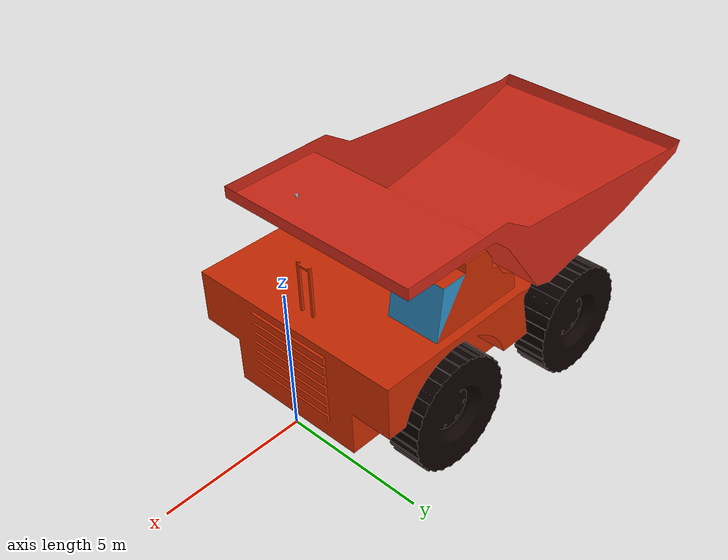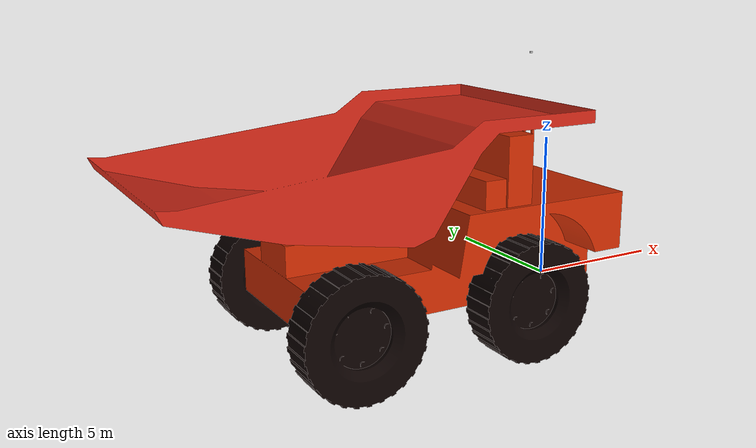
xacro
<?xml version="1.0" ?>
<robot xmlns:xacro="http://www.ros.org/wiki/xacro" name="haul_truck">
  <material name="red">
    <color rgba="0.816 0.157 0.09 1"/>
  </material>
  <material name="black">
    <color rgba="0.043 0.004 0 1"/>
  </material>
  <material name="orange">
    <color rgba="1 0.482 0.251 1" />
  </material>

  <xacro:include filename="$(find start_creating_robots)/worlds_and_models/krytn/inertial.xacro" />

  <xacro:macro name="wheel" params="name">
    <link name="${name}">
      <visual>
        <!--Wheel/Body001.-->
        <origin xyz="0.0 0.0 0.0" rpy="0.0 -0.0 0.0"/>
        <geometry>
          <mesh filename="file://$(find haul_truck)/worlds_and_models/haul_truck/meshes/safeai_Body001.dae"/>
        </geometry>
        <material name="black" />
      </visual>
      <collision>
        <!--Wheel/Body001.-->
        <origin xyz="0.0 0.0 0.0" rpy="0.0 -0.0 0.0"/>
        <geometry>
          <mesh filename="file://$(find haul_truck)/worlds_and_models/haul_truck/meshes/safeai_Pad012.dae"/>
        </geometry>

      </collision>
      <xacro:sphere_inertial radius="1" mass="0.2" />
    </link>

    <gazebo reference="${name}">
      <collision>
        <surface>
          <friction>
            <ode>
              <mu>1.0</mu>
              <mu2>1.0</mu2>
              <fdir1>0 0 1</fdir1>
              <slip1>0.0</slip1>
              <slip2>0.0</slip2>
              <min_depth>0.01</min_depth>
              <kp>1e8</kp>
            </ode>
          </friction>
        </surface>
      </collision>
    </gazebo>
  </xacro:macro>

  <link name="base_footprint" />

  <joint name="chassis_joint" type="fixed">
    <parent link="base_footprint" />
    <child link="chassis_link" />
    <origin rpy="0 0 1.5705" />
  </joint>

  <!--Generated by CROSS, a ROS Workbench for FreeCAD (https://github.com/galou/freecad.cross)-->
  <link name="chassis_link">
    <visual>
      <!--Chassis/Body.-->
      <origin xyz="0.0 0.0 0.0" rpy="0.0 -0.0 0.0"/>
      <geometry>
        <mesh filename="file://$(find haul_truck)/worlds_and_models/haul_truck/meshes/safeai_Body.dae"/>
      </geometry>

    </visual>
    <collision>
      <!--real_chassis_link_.Body_bbox-->
      <origin xyz="0.090073 5.25 3.35026" rpy="0.0 -0.0 0.0"/>
      <geometry>
        <box size="7.6383887394832115 10.500000000000005 0.54423459552541"/>
      </geometry>
      <gazebo>
        <mu>0.1</mu>
      </gazebo>
    </collision>
    <xacro:box_inertial_with_origin x="8" y="4" z="3" mass="100">
      <origin xyz="0 5 0" rpy="0 0 0" />
    </xacro:box_inertial_with_origin>
  </link>
  <link name="tray_link">
    <visual>
      <!--Tray/Body002.-->
      <origin xyz="0.0 0.0 0.0" rpy="0.0 -0.0 0.0"/>
      <geometry>
        <mesh filename="file://$(find haul_truck)/worlds_and_models/haul_truck/meshes/Unnamed_Body002.dae"/>
      </geometry>
      <material name="red" />
    </visual>
    <collision>
      <!--Tray/Body002.-->
      <origin xyz="0.0 0.0 0.0" rpy="0.0 -0.0 0.0"/>
      <geometry>
        <mesh filename="file://$(find haul_truck)/worlds_and_models/haul_truck/meshes/Unnamed_Body002.dae"/>
      </geometry>
    </collision>
  </link>
  <xacro:wheel name="front_left_wheel_link" />
  <xacro:wheel name="front_right_wheel_link" />
  <xacro:wheel name="rear_left_wheel_link" />
  <xacro:wheel name="rear_right_wheel_link" />

  <joint name="tray_joint" type="fixed">
    <parent link="chassis_link"/>
    <child link="tray_link"/>
    <origin xyz="-3.8 1.0 3.1" rpy="0.0 -0.0 0.0"/>
  </joint>

  <xacro:if value="False">
    <link name="front_left_steering_link">
      <xacro:box_inertial x="0.1" y="1" z="0.1" mass="1"/>
    </link>
    <link name="front_right_steering_link">
      <xacro:box_inertial x="0.1" y="1" z="0.1" mass="1"/>
    </link>
    <joint name="front_left_steering_joint" type="revolute">
      <parent link="chassis_link" />
      <child link="front_left_steering_link" />
      <axis xyz="0 0 1"/>
      <origin xyz="2.8 3.2 0.6" rpy="0.0 -0.0 0.0"/>
      <limit lower="-0.4" upper="0.4" effort="10000000" velocity="1000.00"/>

    </joint>
    <joint name="front_right_steering_joint" type="revolute">
      <parent link="chassis_link" />
      <child link="front_right_steering_link" />
      <origin xyz="-4.0 3.2 0.6" rpy="0.0 -0.0 0.0"/>
      <axis xyz="0 0 1"/>
      <limit lower="-0.4" upper="0.4" effort="10000000" velocity="1000.00"/>
    </joint>

    <joint name="front_left_wheel_joint" type="continuous">
      <parent link="front_left_steering_link"/>
      <child link="front_left_wheel_link"/>
      <axis xyz="1 0 0"/>
    </joint>
    <joint name="front_right_wheel_joint" type="continuous">
      <parent link="front_right_steering_link"/>
      <child link="front_right_wheel_link"/>
      <axis xyz="1 0 0"/>
    </joint>

  </xacro:if>

  <xacro:if value="True">

    <joint name="front_left_wheel_joint" type="continuous">
      <parent link="chassis_link"/>
      <child link="front_left_wheel_link"/>
      <origin xyz="2.8 3.2 0.6" rpy="0.0 -0.0 0.0"/>
      <limit effort="10000000" velocity="1000.00" stiffness="0" dissipation="0"/>

      <axis xyz="1 0 0"/>
    </joint>
    <joint name="front_right_wheel_joint" type="continuous">
      <parent link="chassis_link"/>
      <child link="front_right_wheel_link"/>
      <origin xyz="-4.0 3.2 0.6" rpy="0.0 -0.0 0.0"/>
      <limit effort="10000000" velocity="1000.00" stiffness="0" dissipation="0"/>

      <axis xyz="1 0 0"/>
    </joint>
  </xacro:if>

  <joint name="rear_left_wheel_joint" type="continuous">
    <parent link="chassis_link"/>
    <child link="rear_left_wheel_link"/>
    <origin xyz="2.8 9.3 0.6" rpy="0.0 -0.0 0.0"/>
    <axis xyz="1 0 0"/>
    <limit effort="10000000" velocity="1000.00"/>

  </joint>
  <joint name="rear_right_wheel_joint" type="continuous">
    <parent link="chassis_link"/>
    <child link="rear_right_wheel_link"/>
    <origin xyz="-4.0 9.3 0.6" rpy="0.0 -0.0 0.0"/>
    <axis xyz="1 0 0"/>
    <limit effort="10000000" velocity="1000.00"/>
  </joint>

  <xacro:include filename="$(find haul_truck)/worlds_and_models/haul_truck/lidar_3d_v1.urdf.xacro" />

  <gazebo>
    <plugin filename="ignition-gazebo-sensors-system" name="ignition::gazebo::systems::Sensors">
      <render_engine>ogre2</render_engine>
    </plugin>

    <!-- Publish joints for robot description tf publisher. -->
    <plugin filename="ignition-gazebo-joint-state-publisher-system" name="ignition::gazebo::systems::JointStatePublisher">
      <topic>joint_states</topic>
    </plugin>

  </gazebo>

  <ros2_control name="GazeboSystem" type="system">
    <hardware>
      <plugin>ign_ros2_control/IgnitionSystem</plugin>
    </hardware>
    <xacro:if value="False">
      <joint name="front_left_steering_joint">
        <command_interface name="position">
          <param name="min">-0.2</param>
          <param name="max">0.2</param>
        </command_interface>
        <state_interface name="position"/>
      </joint>
      <joint name="front_right_steering_joint">
        <command_interface name="position">
          <param name="min">-0.2</param>
          <param name="max">0.2</param>
        </command_interface>
        <state_interface name="position"/>
      </joint>
      <!-- Adding front wheel state interfaces so that their position is given to ros -->
      <joint name="front_left_wheel_joint">
        <command_interface name="velocity">
          <param name="min">-0.2</param>
          <param name="max">0.2</param>
        </command_interface>
        <state_interface name="position"/>
        <state_interface name="velocity"/>
      </joint>
      <joint name="front_right_wheel_joint">
        <command_interface name="velocity">
          <param name="min">-0.2</param>
          <param name="max">0.2</param>
        </command_interface>
        <state_interface name="position"/>
        <state_interface name="velocity"/>
      </joint>
    </xacro:if>
    <xacro:if value="False">
      <joint name="front_left_wheel_joint">
        <command_interface name="velocity">
          <param name="min">-0.2</param>
          <param name="max">0.2</param>
        </command_interface>
        <state_interface name="position"/>
        <state_interface name="velocity"/>
      </joint>
      <joint name="front_right_wheel_joint">
        <command_interface name="velocity">
          <param name="min">-0.2</param>
          <param name="max">0.2</param>
        </command_interface>
        <state_interface name="position"/>
        <state_interface name="velocity"/>
      </joint>
    </xacro:if>
    <joint name="rear_left_wheel_joint">
      <command_interface name="velocity">
        <param name="min">-0.2</param>
        <param name="max">0.2</param>
      </command_interface>
      <state_interface name="position"/>
      <state_interface name="velocity"/>
    </joint>
    <joint name="rear_right_wheel_joint">
      <command_interface name="velocity">
        <param name="min">-0.2</param>
        <param name="max">0.2</param>
      </command_interface>
      <state_interface name="position"/>
      <state_interface name="velocity"/>
    </joint>

  </ros2_control>

  <gazebo>
    <plugin filename="ign_ros2_control-system" name="ign_ros2_control::IgnitionROS2ControlPlugin">
      <ros>
        <remapping>/diff_drive_base_controller/odometry:=odom</remapping>
        <remapping>/diff_drive_base_controller/tf_odometry:=tf</remapping>
        <remapping>/diff_drive_base_controller/cmd_vel_unstamped:=cmd_vel</remapping>
      </ros>
      <parameters>$(find haul_truck)/config/diffdrive_control.yaml</parameters>
    </plugin>
    <!-- Remapping topics so that mapping system works! -->

  </gazebo>

</robot>

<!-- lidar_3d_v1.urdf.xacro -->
<robot xmlns:xacro="http://www.ros.org/wiki/xacro" name="lidar_3d_v1">

  <link name="lidar_3d_v1">
    <xacro:cylinder_inertial_with_origin radius="0.02" length="0.35" mass="0.83">
      <origin xyz="0 0 0.03" rpy="0 0 0" />
    </xacro:cylinder_inertial_with_origin>

    <collision name="collision">
      <geometry>
        <cylinder radius="0.0516" length="0.0717" />
      </geometry>
    </collision>
    <visual name="visual">
      <geometry>
        <mesh filename="file://$(find haul_truck)/worlds_and_models/haul_truck/meshes/lidar_3d_v1.dae" />
      </geometry>
    </visual>
  </link>

  <joint name="lidar_joint" type="fixed">
    <parent link="chassis_link" />
    <child link="lidar_3d_v1" />
    <origin xyz="0.0 0.8 8.0" rpy="0.0 -0.0 -1.57"/>

  </joint>

  <gazebo reference="lidar_3d_v1">
    <sensor name="lidar_3d_v1" type="gpu_ray">
      <topic>lidar</topic>
      <ignition_frame_id>lidar_3d_v1</ignition_frame_id>
      <pose>0 0 0.0525045525 0 0 0</pose>
      <ray>
        <scan>
          <horizontal>
            <samples>60</samples>
            <resolution>1</resolution>
            <min_angle>-3.14</min_angle>
            <max_angle>3.14</max_angle>
          </horizontal>
        </scan>
        <range>
          <min>0.060</min>
          <max>100</max>
          <resolution>0.1</resolution>
        </range>
        <noise>
          <type>gaussian</type>
          <mean>0.0</mean>
          <stddev>0.001</stddev>
        </noise>
      </ray>
      <always_on>0</always_on>
      <update_rate>10</update_rate>
      <visualize>true</visualize>
    </sensor>

  </gazebo>

</robot>
